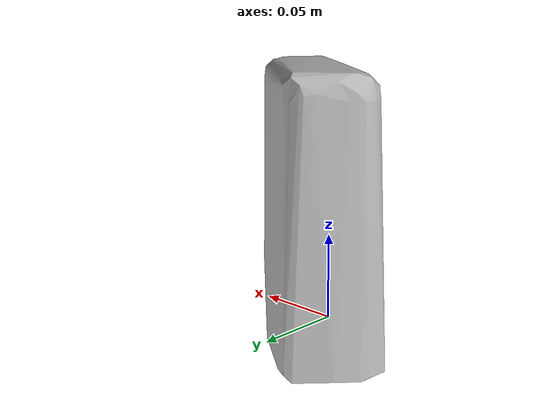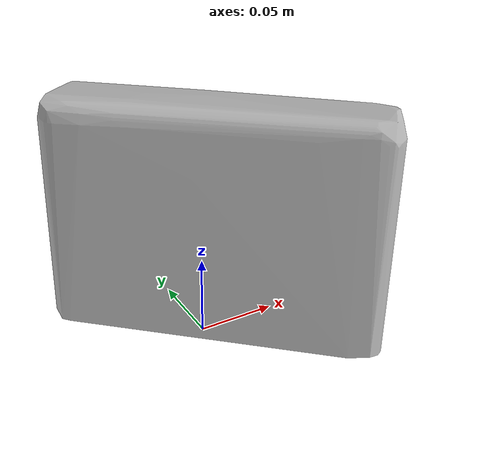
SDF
<?xml version='1.0'?>
<sdf version="1.4">
  <model name="nutrigrain_cherry">
    <static>false</static>
    <link name="link">
      <inertial>
        <pose>0.01106591028670485 0.0027662727718642745 0.07424504465097871 -1.5752017852192628 -0.0030336510822249526 0.8461854391294661</pose>
        <mass>0.13898017288619266</mass>
        <inertia>
          <ixx>0.0006827013347306018</ixx>
          <ixy>-1.4336937631690871e-21</ixy>
          <ixz>-9.339215092545587e-21</ixz>
          <iyy>0.0004825246905859036</iyy>
          <iyz>-2.6401234875079963e-22</iyz>
          <izz>0.0002557661578986461</izz>
        </inertia>
      </inertial>
      <collision name="collision">
        <geometry>
          <mesh>
            <!-- Use a downsampled mesh for collisions -->
            <uri>model:///nutrigrain_cherry/nutrigrain_cherry_250_collision.obj</uri>
	        </mesh>
        </geometry>
        <surface>
      </surface>
      </collision>
      <visual name="visual">
        <geometry>
          <mesh>
            <uri>model:///nutrigrain_cherry/optimized_tsdf_texture_mapped_mesh.obj</uri>
	        </mesh>
        </geometry>
        <material>
          <script>
            <uri>model:///nutrigrain_cherry/nutrigrain_cherry.material</uri>
            <name>nutrigrain_cherry</name>
          </script>
        </material>
      </visual>
    </link>
  </model>
</sdf>
